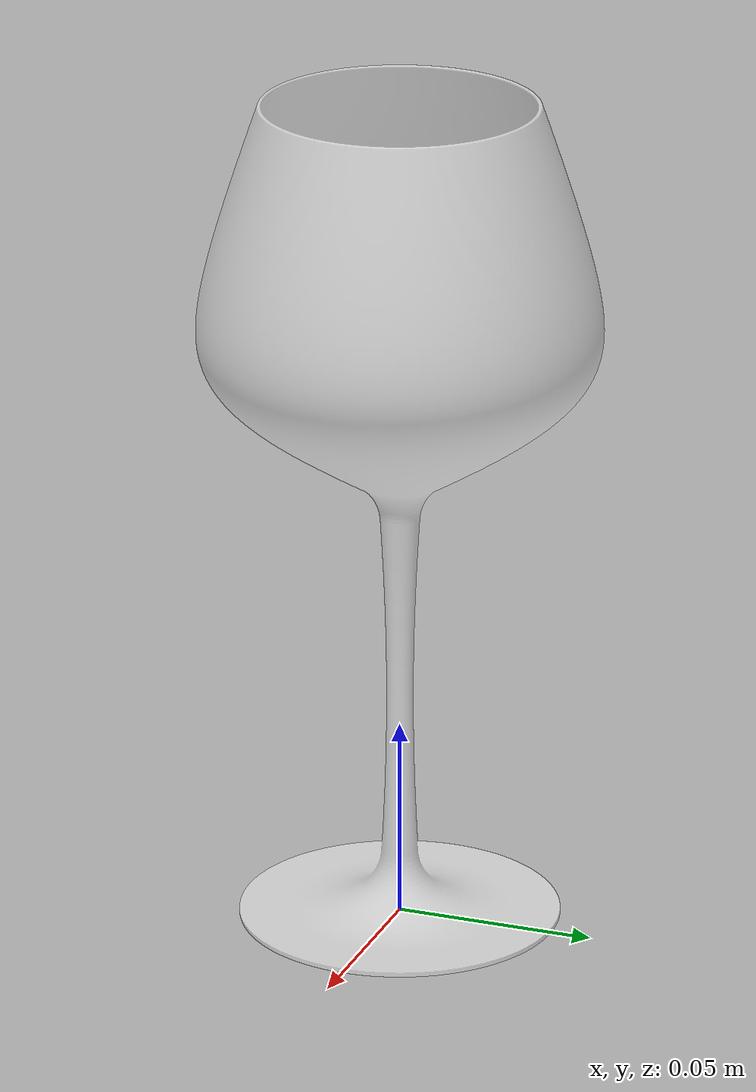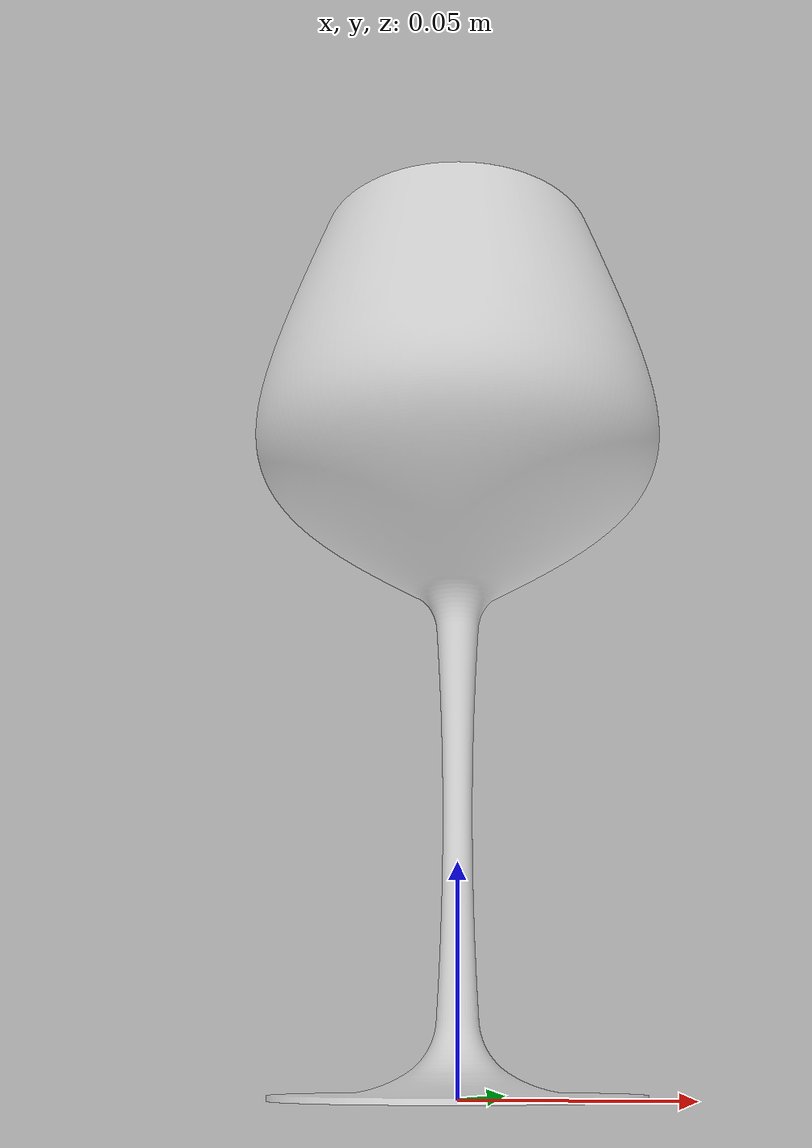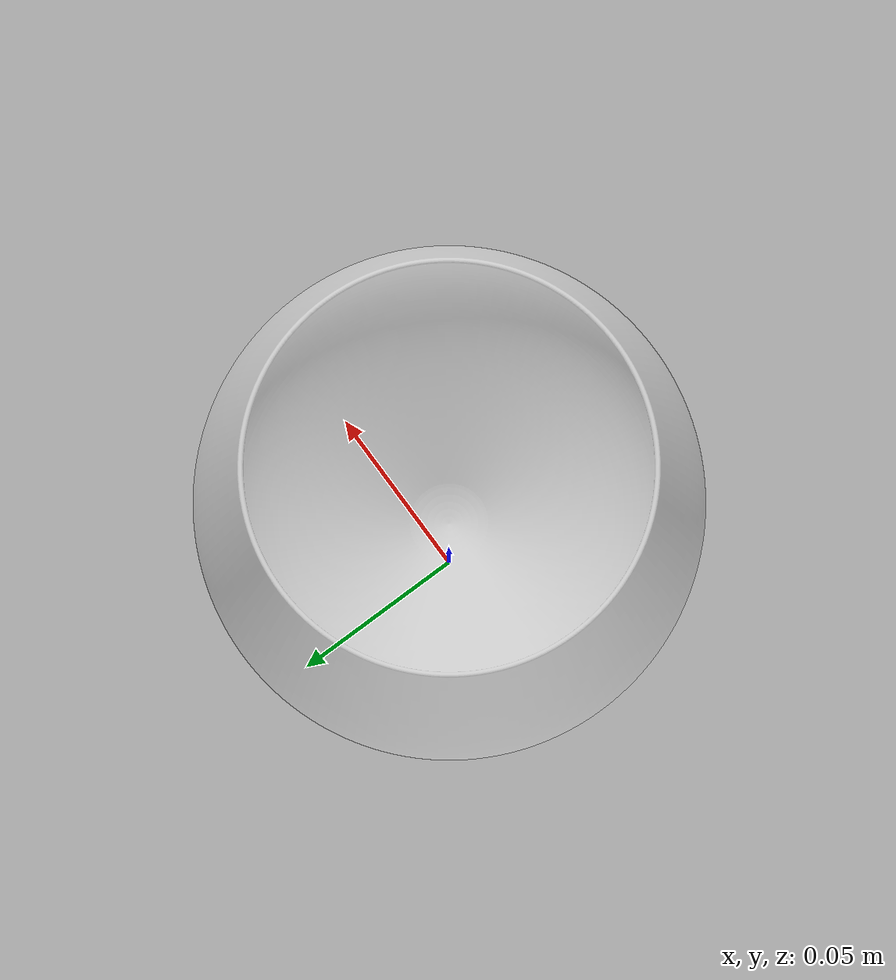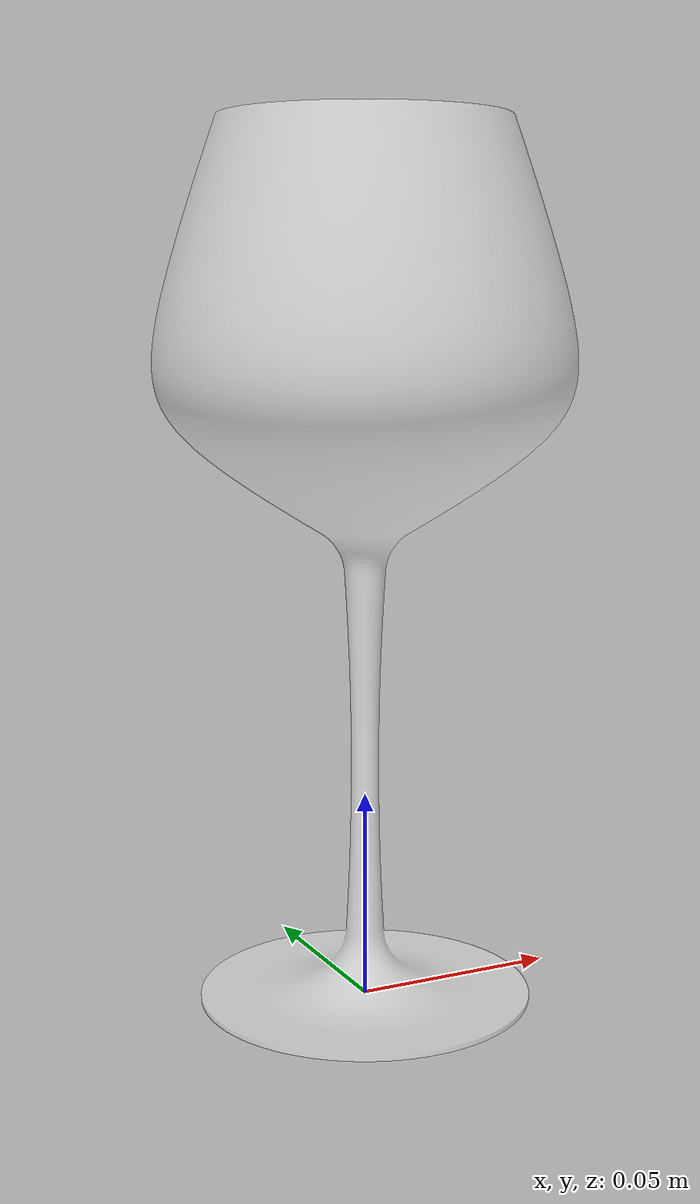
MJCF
<!-- Mesh sourced from https://www.thingiverse.com/thing:4001273/files with CC BY-NC license -->

<mujoco model="wine_glass">
  <asset>
    <mesh file="meshes/wine_glass.stl" name="wine_mesh" scale="0.001 0.001 0.001"/>
    <material name="glass" reflectance="0.5" rgba="1 1 1 0.5"/>
  </asset>
  <worldbody>
    <body>
      <body name="object">
        <geom pos="0 0 0" mesh="wine_mesh" type="mesh" solimp="0.998 0.998 0.001" solref="0.001 1" density="50" friction="0.95 0.3 0.1" material="glass" contype="0" conaffinity="0" group="1"/>
        <geom pos="0 0 0" mesh="wine_mesh" type="mesh" solimp="0.998 0.998 0.001" solref="0.001 1" density="50" friction="0.95 0.3 0.1" material="glass" group="0"/>
      </body>
      <site rgba="0 0 0 0" size="0.005" pos="0 0 -0.082" name="bottom_site"/>
      <site rgba="0 0 0 0" size="0.005" pos="0 0 0.075" name="top_site"/>
      <site rgba="0 0 0 0" size="0.005" pos="0.0254 0.0254 0" name="horizontal_radius_site"/>
    </body>
  </worldbody>
</mujoco>
